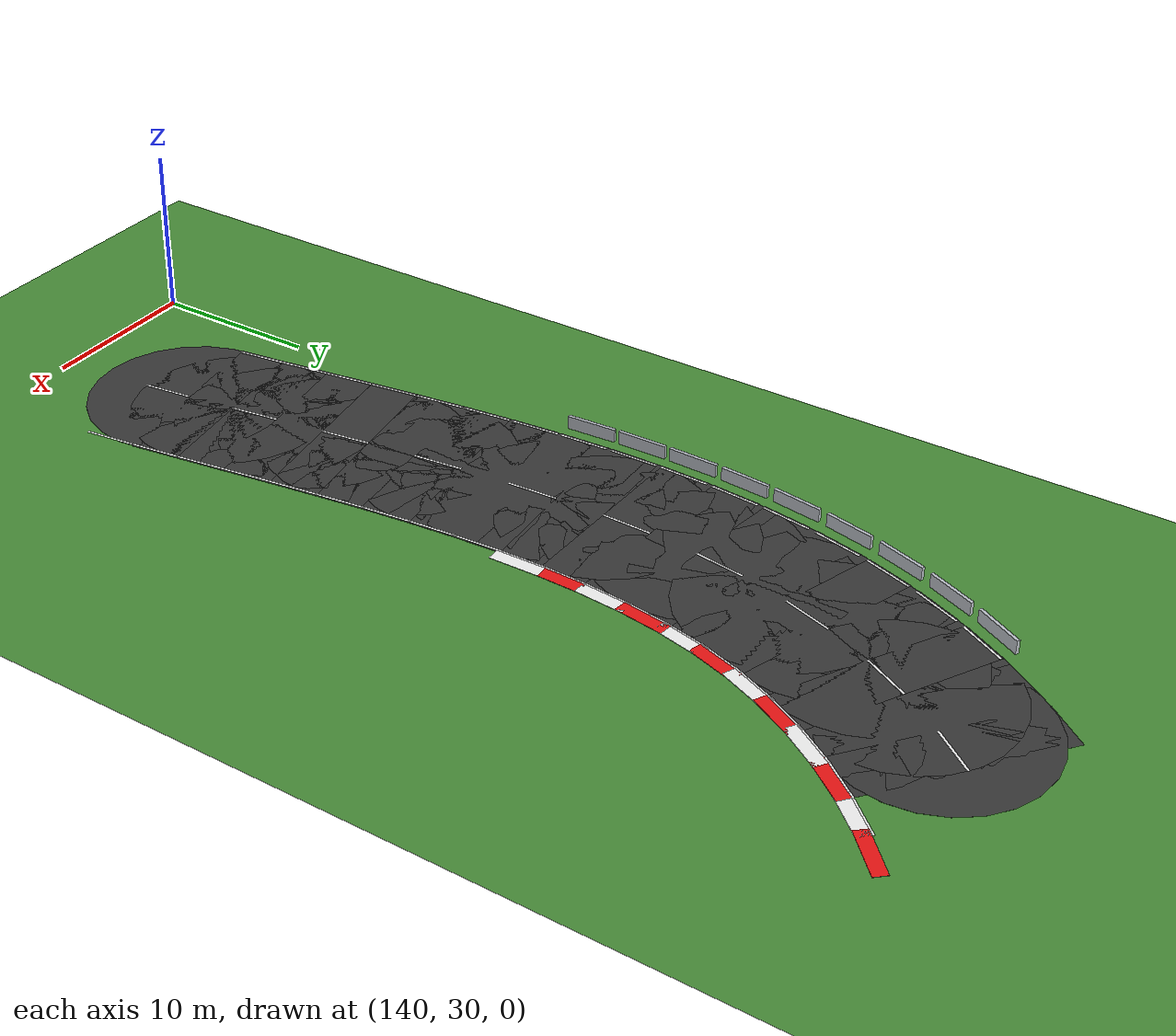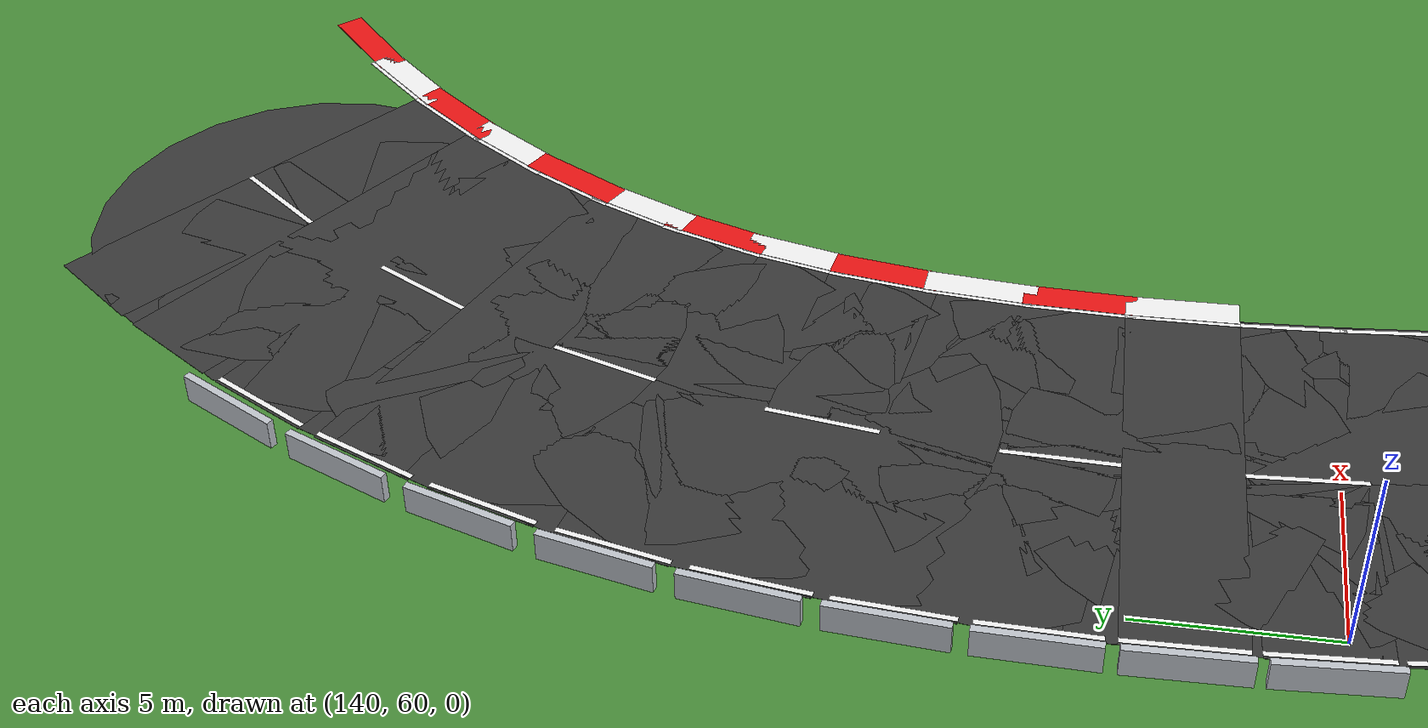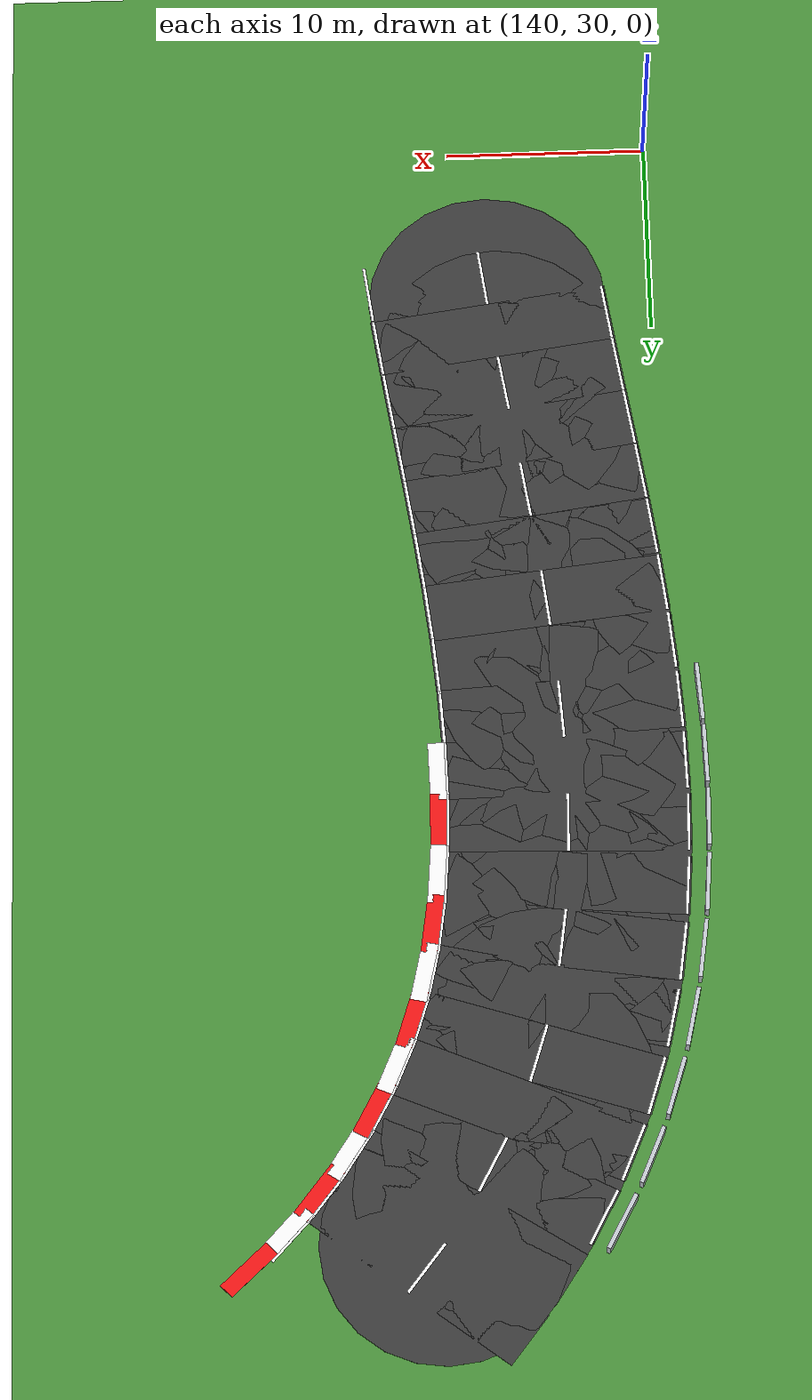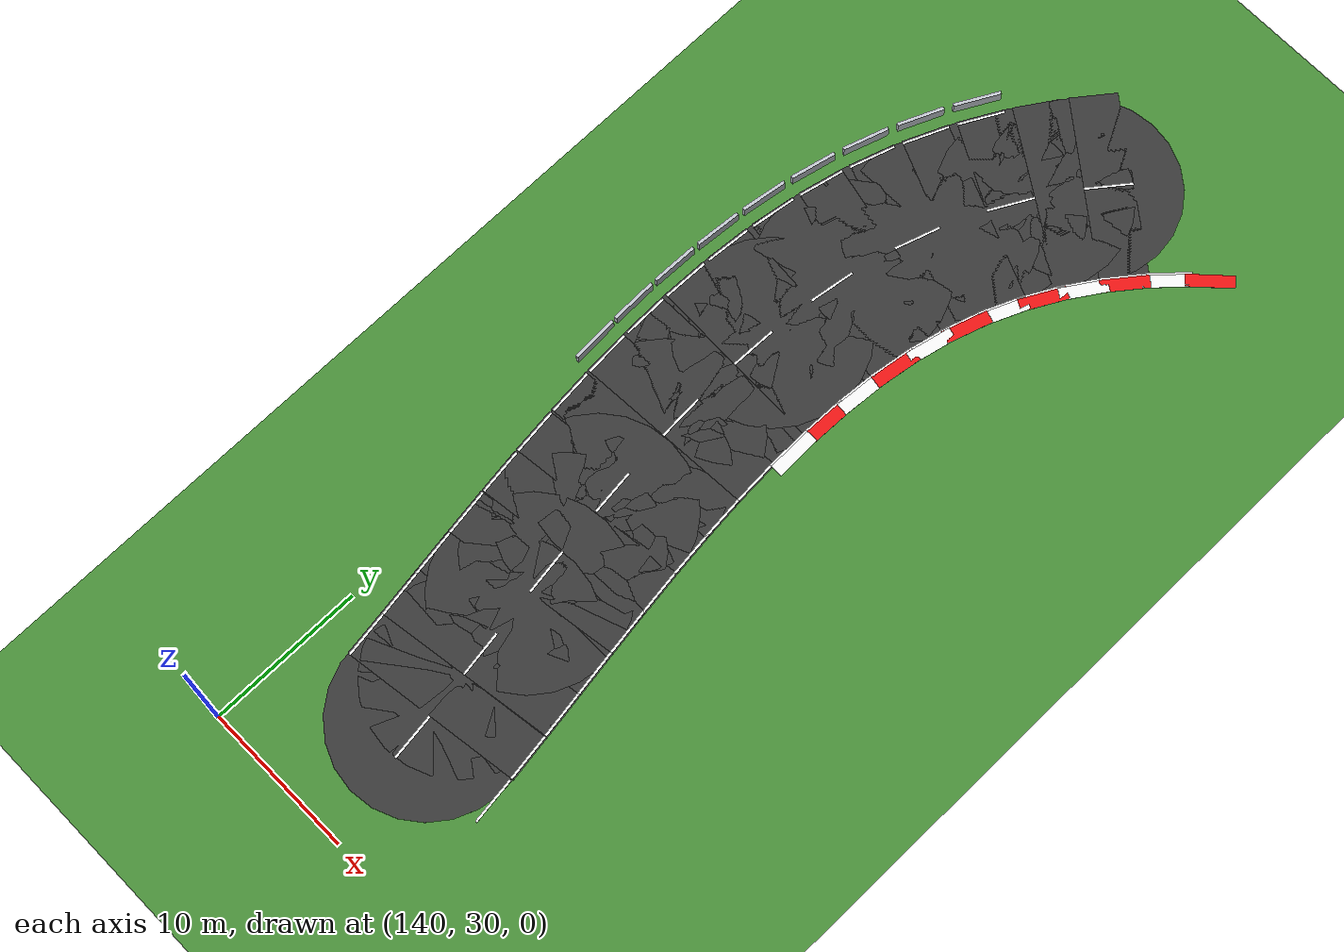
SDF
<sdf version="1.6">
 <world name="sem_silesia_ring_2026">
  <model name="ground_plane">
   <static>true</static>
   <link name="link">
    <collision name="collision">
     <geometry><plane><normal>0 0 1</normal><size>1200 1200</size></plane></geometry>
     <surface><friction><ode><mu>0.6</mu><mu2>0.6</mu2></ode></friction></surface>
    </collision>
    <visual name="visual">
     <geometry><plane><normal>0 0 1</normal><size>1200 1200</size></plane></geometry>
     <material><ambient>0.28 0.55 0.22 1</ambient><diffuse>0.28 0.55 0.22 1</diffuse></material>
    </visual>
   </link>
  </model>
  <model name="wl_R_s58">
   <static>true</static>
   <pose>154.2240 37.7542 0.0070 0 0 1.7028</pose>
   <link name="link">
    <visual name="v">
     <geometry><box><size>3.0025 0.1500 0.0080</size></box></geometry>
     <material><ambient>0.95 0.95 0.95 1</ambient><diffuse>0.95 0.95 0.95 1</diffuse></material>
    </visual>
   </link>
  </model>
  <model name="cd_s58">
   <static>true</static>
   <pose>148.4249 36.9842 0.0070 0 0 1.7028</pose>
   <link name="link">
    <visual name="v">
     <geometry><box><size>3.0025 0.1500 0.0080</size></box></geometry>
     <material><ambient>0.95 0.95 0.95 1</ambient><diffuse>0.95 0.95 0.95 1</diffuse></material>
    </visual>
   </link>
  </model>
  <model name="road_s59">
   <static>true</static>
   <pose>148.0098 39.9578 0.0030 0 0 1.7161</pose>
   <link name="link">
    <visual name="v">
     <geometry><box><size>3.0025 12.0000 0.0060</size></box></geometry>
     <material><ambient>0.22 0.22 0.22 1</ambient><diffuse>0.22 0.22 0.22 1</diffuse></material>
    </visual>
    <collision name="c">
     <geometry><box><size>3.0025 12.0000 0.0060</size></box></geometry>
     <surface><friction><ode><mu>0.9</mu><mu2>0.9</mu2></ode></friction></surface>
    </collision>
   </link>
  </model>
  <model name="road_jnt59">
   <static>true</static>
   <pose>148.2273 38.4724 0.0030 0 0 0</pose>
   <link name="link">
    <visual name="v">
     <geometry><cylinder><radius>6.0000</radius><length>0.0060</length></cylinder></geometry>
     <material><ambient>0.22 0.22 0.22 1</ambient><diffuse>0.22 0.22 0.22 1</diffuse></material>
    </visual>
    <collision name="c">
     <geometry><cylinder><radius>6.0000</radius><length>0.0060</length></cylinder></geometry>
     <surface><friction><ode><mu>0.9</mu><mu2>0.9</mu2></ode></friction></surface>
    </collision>
   </link>
  </model>
  <model name="wl_L_s59">
   <static>true</static>
   <pose>142.2215 39.1106 0.0070 0 0 1.7161</pose>
   <link name="link">
    <visual name="v">
     <geometry><box><size>3.0025 0.1500 0.0080</size></box></geometry>
     <material><ambient>0.95 0.95 0.95 1</ambient><diffuse>0.95 0.95 0.95 1</diffuse></material>
    </visual>
   </link>
  </model>
  <model name="wl_R_s59">
   <static>true</static>
   <pose>153.7982 40.8051 0.0070 0 0 1.7161</pose>
   <link name="link">
    <visual name="v">
     <geometry><box><size>3.0025 0.1500 0.0080</size></box></geometry>
     <material><ambient>0.95 0.95 0.95 1</ambient><diffuse>0.95 0.95 0.95 1</diffuse></material>
    </visual>
   </link>
  </model>
  <model name="road_s60">
   <static>true</static>
   <pose>147.5647 42.9272 0.0030 0 0 1.7231</pose>
   <link name="link">
    <visual name="v">
     <geometry><box><size>3.0025 12.0000 0.0060</size></box></geometry>
     <material><ambient>0.22 0.22 0.22 1</ambient><diffuse>0.22 0.22 0.22 1</diffuse></material>
    </visual>
    <collision name="c">
     <geometry><box><size>3.0025 12.0000 0.0060</size></box></geometry>
     <surface><friction><ode><mu>0.9</mu><mu2>0.9</mu2></ode></friction></surface>
    </collision>
   </link>
  </model>
  <model name="road_jnt60">
   <static>true</static>
   <pose>147.7924 41.4433 0.0030 0 0 0</pose>
   <link name="link">
    <visual name="v">
     <geometry><cylinder><radius>6.0000</radius><length>0.0060</length></cylinder></geometry>
     <material><ambient>0.22 0.22 0.22 1</ambient><diffuse>0.22 0.22 0.22 1</diffuse></material>
    </visual>
    <collision name="c">
     <geometry><cylinder><radius>6.0000</radius><length>0.0060</length></cylinder></geometry>
     <surface><friction><ode><mu>0.9</mu><mu2>0.9</mu2></ode></friction></surface>
    </collision>
   </link>
  </model>
  <model name="wl_L_s60">
   <static>true</static>
   <pose>141.7824 42.0397 0.0070 0 0 1.7231</pose>
   <link name="link">
    <visual name="v">
     <geometry><box><size>3.0025 0.1500 0.0080</size></box></geometry>
     <material><ambient>0.95 0.95 0.95 1</ambient><diffuse>0.95 0.95 0.95 1</diffuse></material>
    </visual>
   </link>
  </model>
  <model name="wl_R_s60">
   <static>true</static>
   <pose>153.3470 43.8147 0.0070 0 0 1.7231</pose>
   <link name="link">
    <visual name="v">
     <geometry><box><size>3.0025 0.1500 0.0080</size></box></geometry>
     <material><ambient>0.95 0.95 0.95 1</ambient><diffuse>0.95 0.95 0.95 1</diffuse></material>
    </visual>
   </link>
  </model>
  <model name="cd_s60">
   <static>true</static>
   <pose>147.5647 42.9272 0.0070 0 0 1.7231</pose>
   <link name="link">
    <visual name="v">
     <geometry><box><size>3.0025 0.1500 0.0080</size></box></geometry>
     <material><ambient>0.95 0.95 0.95 1</ambient><diffuse>0.95 0.95 0.95 1</diffuse></material>
    </visual>
   </link>
  </model>
  <model name="road_s61">
   <static>true</static>
   <pose>147.1086 45.8949 0.0030 0 0 1.7235</pose>
   <link name="link">
    <visual name="v">
     <geometry><box><size>3.0025 12.0000 0.0060</size></box></geometry>
     <material><ambient>0.22 0.22 0.22 1</ambient><diffuse>0.22 0.22 0.22 1</diffuse></material>
    </visual>
    <collision name="c">
     <geometry><box><size>3.0025 12.0000 0.0060</size></box></geometry>
     <surface><friction><ode><mu>0.9</mu><mu2>0.9</mu2></ode></friction></surface>
    </collision>
   </link>
  </model>
  <model name="road_jnt61">
   <static>true</static>
   <pose>147.3369 44.4111 0.0030 0 0 0</pose>
   <link name="link">
    <visual name="v">
     <geometry><cylinder><radius>6.0000</radius><length>0.0060</length></cylinder></geometry>
     <material><ambient>0.22 0.22 0.22 1</ambient><diffuse>0.22 0.22 0.22 1</diffuse></material>
    </visual>
    <collision name="c">
     <geometry><cylinder><radius>6.0000</radius><length>0.0060</length></cylinder></geometry>
     <surface><friction><ode><mu>0.9</mu><mu2>0.9</mu2></ode></friction></surface>
    </collision>
   </link>
  </model>
  <model name="wl_L_s61">
   <static>true</static>
   <pose>141.3267 45.0053 0.0070 0 0 1.7235</pose>
   <link name="link">
    <visual name="v">
     <geometry><box><size>3.0025 0.1500 0.0080</size></box></geometry>
     <material><ambient>0.95 0.95 0.95 1</ambient><diffuse>0.95 0.95 0.95 1</diffuse></material>
    </visual>
   </link>
  </model>
  <model name="wl_R_s61">
   <static>true</static>
   <pose>152.8906 46.7845 0.0070 0 0 1.7235</pose>
   <link name="link">
    <visual name="v">
     <geometry><box><size>3.0025 0.1500 0.0080</size></box></geometry>
     <material><ambient>0.95 0.95 0.95 1</ambient><diffuse>0.95 0.95 0.95 1</diffuse></material>
    </visual>
   </link>
  </model>
  <model name="road_s62">
   <static>true</static>
   <pose>146.6612 48.8639 0.0030 0 0 1.7173</pose>
   <link name="link">
    <visual name="v">
     <geometry><box><size>3.0025 12.0000 0.0060</size></box></geometry>
     <material><ambient>0.22 0.22 0.22 1</ambient><diffuse>0.22 0.22 0.22 1</diffuse></material>
    </visual>
    <collision name="c">
     <geometry><box><size>3.0025 12.0000 0.0060</size></box></geometry>
     <surface><friction><ode><mu>0.9</mu><mu2>0.9</mu2></ode></friction></surface>
    </collision>
   </link>
  </model>
  <model name="road_jnt62">
   <static>true</static>
   <pose>146.8803 47.3787 0.0030 0 0 0</pose>
   <link name="link">
    <visual name="v">
     <geometry><cylinder><radius>6.0000</radius><length>0.0060</length></cylinder></geometry>
     <material><ambient>0.22 0.22 0.22 1</ambient><diffuse>0.22 0.22 0.22 1</diffuse></material>
    </visual>
    <collision name="c">
     <geometry><cylinder><radius>6.0000</radius><length>0.0060</length></cylinder></geometry>
     <surface><friction><ode><mu>0.9</mu><mu2>0.9</mu2></ode></friction></surface>
    </collision>
   </link>
  </model>
  <model name="wl_L_s62">
   <static>true</static>
   <pose>140.8739 48.0101 0.0070 0 0 1.7173</pose>
   <link name="link">
    <visual name="v">
     <geometry><box><size>3.0025 0.1500 0.0080</size></box></geometry>
     <material><ambient>0.95 0.95 0.95 1</ambient><diffuse>0.95 0.95 0.95 1</diffuse></material>
    </visual>
   </link>
  </model>
  <model name="wl_R_s62">
   <static>true</static>
   <pose>152.4486 49.7176 0.0070 0 0 1.7173</pose>
   <link name="link">
    <visual name="v">
     <geometry><box><size>3.0025 0.1500 0.0080</size></box></geometry>
     <material><ambient>0.95 0.95 0.95 1</ambient><diffuse>0.95 0.95 0.95 1</diffuse></material>
    </visual>
   </link>
  </model>
  <model name="cd_s62">
   <static>true</static>
   <pose>146.6612 48.8639 0.0070 0 0 1.7173</pose>
   <link name="link">
    <visual name="v">
     <geometry><box><size>3.0025 0.1500 0.0080</size></box></geometry>
     <material><ambient>0.95 0.95 0.95 1</ambient><diffuse>0.95 0.95 0.95 1</diffuse></material>
    </visual>
   </link>
  </model>
  <model name="road_s63">
   <static>true</static>
   <pose>146.2415 51.8368 0.0030 0 0 1.7048</pose>
   <link name="link">
    <visual name="v">
     <geometry><box><size>3.0025 12.0000 0.0060</size></box></geometry>
     <material><ambient>0.22 0.22 0.22 1</ambient><diffuse>0.22 0.22 0.22 1</diffuse></material>
    </visual>
    <collision name="c">
     <geometry><box><size>3.0025 12.0000 0.0060</size></box></geometry>
     <surface><friction><ode><mu>0.9</mu><mu2>0.9</mu2></ode></friction></surface>
    </collision>
   </link>
  </model>
  <model name="road_jnt63">
   <static>true</static>
   <pose>146.4421 50.3490 0.0030 0 0 0</pose>
   <link name="link">
    <visual name="v">
     <geometry><cylinder><radius>6.0000</radius><length>0.0060</length></cylinder></geometry>
     <material><ambient>0.22 0.22 0.22 1</ambient><diffuse>0.22 0.22 0.22 1</diffuse></material>
    </visual>
    <collision name="c">
     <geometry><cylinder><radius>6.0000</radius><length>0.0060</length></cylinder></geometry>
     <surface><friction><ode><mu>0.9</mu><mu2>0.9</mu2></ode></friction></surface>
    </collision>
   </link>
  </model>
  <model name="wl_L_s63">
   <static>true</static>
   <pose>140.4440 51.0550 0.0070 0 0 1.7048</pose>
   <link name="link">
    <visual name="v">
     <geometry><box><size>3.0025 0.1500 0.0080</size></box></geometry>
     <material><ambient>0.95 0.95 0.95 1</ambient><diffuse>0.95 0.95 0.95 1</diffuse></material>
    </visual>
   </link>
  </model>
  <model name="wl_R_s63">
   <static>true</static>
   <pose>152.0390 52.6186 0.0070 0 0 1.7048</pose>
   <link name="link">
    <visual name="v">
     <geometry><box><size>3.0025 0.1500 0.0080</size></box></geometry>
     <material><ambient>0.95 0.95 0.95 1</ambient><diffuse>0.95 0.95 0.95 1</diffuse></material>
    </visual>
   </link>
  </model>
  <model name="road_s64">
   <static>true</static>
   <pose>145.8673 54.8158 0.0030 0 0 1.6867</pose>
   <link name="link">
    <visual name="v">
     <geometry><box><size>3.0025 12.0000 0.0060</size></box></geometry>
     <material><ambient>0.22 0.22 0.22 1</ambient><diffuse>0.22 0.22 0.22 1</diffuse></material>
    </visual>
    <collision name="c">
     <geometry><box><size>3.0025 12.0000 0.0060</size></box></geometry>
     <surface><friction><ode><mu>0.9</mu><mu2>0.9</mu2></ode></friction></surface>
    </collision>
   </link>
  </model>
  <model name="road_jnt64">
   <static>true</static>
   <pose>146.0409 53.3246 0.0030 0 0 0</pose>
   <link name="link">
    <visual name="v">
     <geometry><cylinder><radius>6.0000</radius><length>0.0060</length></cylinder></geometry>
     <material><ambient>0.22 0.22 0.22 1</ambient><diffuse>0.22 0.22 0.22 1</diffuse></material>
    </visual>
    <collision name="c">
     <geometry><cylinder><radius>6.0000</radius><length>0.0060</length></cylinder></geometry>
     <surface><friction><ode><mu>0.9</mu><mu2>0.9</mu2></ode></friction></surface>
    </collision>
   </link>
  </model>
  <model name="wl_L_s64">
   <static>true</static>
   <pose>140.0565 54.1396 0.0070 0 0 1.6867</pose>
   <link name="link">
    <visual name="v">
     <geometry><box><size>3.0025 0.1500 0.0080</size></box></geometry>
     <material><ambient>0.95 0.95 0.95 1</ambient><diffuse>0.95 0.95 0.95 1</diffuse></material>
    </visual>
   </link>
  </model>
  <model name="wl_R_s64">
   <static>true</static>
   <pose>151.6781 55.4920 0.0070 0 0 1.6867</pose>
   <link name="link">
    <visual name="v">
     <geometry><box><size>3.0025 0.1500 0.0080</size></box></geometry>
     <material><ambient>0.95 0.95 0.95 1</ambient><diffuse>0.95 0.95 0.95 1</diffuse></material>
    </visual>
   </link>
  </model>
  <model name="cd_s64">
   <static>true</static>
   <pose>145.8673 54.8158 0.0070 0 0 1.6867</pose>
   <link name="link">
    <visual name="v">
     <geometry><box><size>3.0025 0.1500 0.0080</size></box></geometry>
     <material><ambient>0.95 0.95 0.95 1</ambient><diffuse>0.95 0.95 0.95 1</diffuse></material>
    </visual>
   </link>
  </model>
  <model name="road_s65">
   <static>true</static>
   <pose>145.5567 57.8019 0.0030 0 0 1.6623</pose>
   <link name="link">
    <visual name="v">
     <geometry><box><size>3.0024 12.0000 0.0060</size></box></geometry>
     <material><ambient>0.22 0.22 0.22 1</ambient><diffuse>0.22 0.22 0.22 1</diffuse></material>
    </visual>
    <collision name="c">
     <geometry><box><size>3.0024 12.0000 0.0060</size></box></geometry>
     <surface><friction><ode><mu>0.9</mu><mu2>0.9</mu2></ode></friction></surface>
    </collision>
   </link>
  </model>
  <model name="road_jnt65">
   <static>true</static>
   <pose>145.6938 56.3070 0.0030 0 0 0</pose>
   <link name="link">
    <visual name="v">
     <geometry><cylinder><radius>6.0000</radius><length>0.0060</length></cylinder></geometry>
     <material><ambient>0.22 0.22 0.22 1</ambient><diffuse>0.22 0.22 0.22 1</diffuse></material>
    </visual>
    <collision name="c">
     <geometry><cylinder><radius>6.0000</radius><length>0.0060</length></cylinder></geometry>
     <surface><friction><ode><mu>0.9</mu><mu2>0.9</mu2></ode></friction></surface>
    </collision>
   </link>
  </model>
  <model name="wl_L_s65">
   <static>true</static>
   <pose>139.7311 57.2675 0.0070 0 0 1.6623</pose>
   <link name="link">
    <visual name="v">
     <geometry><box><size>3.0024 0.1500 0.0080</size></box></geometry>
     <material><ambient>0.95 0.95 0.95 1</ambient><diffuse>0.95 0.95 0.95 1</diffuse></material>
    </visual>
   </link>
  </model>
  <model name="wl_R_s65">
   <static>true</static>
   <pose>151.3822 58.3363 0.0070 0 0 1.6623</pose>
   <link name="link">
    <visual name="v">
     <geometry><box><size>3.0024 0.1500 0.0080</size></box></geometry>
     <material><ambient>0.95 0.95 0.95 1</ambient><diffuse>0.95 0.95 0.95 1</diffuse></material>
    </visual>
   </link>
  </model>
  <model name="road_s66">
   <static>true</static>
   <pose>145.3291 60.7953 0.0030 0 0 1.6310</pose>
   <link name="link">
    <visual name="v">
     <geometry><box><size>3.0024 12.0000 0.0060</size></box></geometry>
     <material><ambient>0.22 0.22 0.22 1</ambient><diffuse>0.22 0.22 0.22 1</diffuse></material>
    </visual>
    <collision name="c">
     <geometry><box><size>3.0024 12.0000 0.0060</size></box></geometry>
     <surface><friction><ode><mu>0.9</mu><mu2>0.9</mu2></ode></friction></surface>
    </collision>
   </link>
  </model>
  <model name="road_jnt66">
   <static>true</static>
   <pose>145.4195 59.2969 0.0030 0 0 0</pose>
   <link name="link">
    <visual name="v">
     <geometry><cylinder><radius>6.0000</radius><length>0.0060</length></cylinder></geometry>
     <material><ambient>0.22 0.22 0.22 1</ambient><diffuse>0.22 0.22 0.22 1</diffuse></material>
    </visual>
    <collision name="c">
     <geometry><cylinder><radius>6.0000</radius><length>0.0060</length></cylinder></geometry>
     <surface><friction><ode><mu>0.9</mu><mu2>0.9</mu2></ode></friction></surface>
    </collision>
   </link>
  </model>
  <model name="wl_L_s66">
   <static>true</static>
   <pose>139.4897 60.4431 0.0070 0 0 1.6310</pose>
   <link name="link">
    <visual name="v">
     <geometry><box><size>3.0024 0.1500 0.0080</size></box></geometry>
     <material><ambient>0.95 0.95 0.95 1</ambient><diffuse>0.95 0.95 0.95 1</diffuse></material>
    </visual>
   </link>
  </model>
  <model name="wl_R_s66">
   <static>true</static>
   <pose>151.1685 61.1475 0.0070 0 0 1.6310</pose>
   <link name="link">
    <visual name="v">
     <geometry><box><size>3.0024 0.1500 0.0080</size></box></geometry>
     <material><ambient>0.95 0.95 0.95 1</ambient><diffuse>0.95 0.95 0.95 1</diffuse></material>
    </visual>
   </link>
  </model>
  <model name="cd_s66">
   <static>true</static>
   <pose>145.3291 60.7953 0.0070 0 0 1.6310</pose>
   <link name="link">
    <visual name="v">
     <geometry><box><size>3.0024 0.1500 0.0080</size></box></geometry>
     <material><ambient>0.95 0.95 0.95 1</ambient><diffuse>0.95 0.95 0.95 1</diffuse></material>
    </visual>
   </link>
  </model>
  <model name="arm_outL_66">
   <static>true</static>
   <pose>138.5415 60.3859 0.4000 0 0 1.6310</pose>
   <link name="link">
    <visual name="v">
     <geometry><box><size>3.0024 0.2000 0.8000</size></box></geometry>
     <material><ambient>0.75 0.77 0.80 1</ambient><diffuse>0.75 0.77 0.80 1</diffuse></material>
    </visual>
    <collision name="c">
     <geometry><box><size>3.0024 0.2000 0.8000</size></box></geometry>
     <surface><friction><ode><mu>0.8</mu><mu2>0.8</mu2></ode></friction></surface>
    </collision>
   </link>
  </model>
  <model name="road_s67">
   <static>true</static>
   <pose>145.2063 63.7946 0.0030 0 0 1.5924</pose>
   <link name="link">
    <visual name="v">
     <geometry><box><size>3.0023 12.0000 0.0060</size></box></geometry>
     <material><ambient>0.22 0.22 0.22 1</ambient><diffuse>0.22 0.22 0.22 1</diffuse></material>
    </visual>
    <collision name="c">
     <geometry><box><size>3.0023 12.0000 0.0060</size></box></geometry>
     <surface><friction><ode><mu>0.9</mu><mu2>0.9</mu2></ode></friction></surface>
    </collision>
   </link>
  </model>
  <model name="road_jnt67">
   <static>true</static>
   <pose>145.2388 62.2938 0.0030 0 0 0</pose>
   <link name="link">
    <visual name="v">
     <geometry><cylinder><radius>6.0000</radius><length>0.0060</length></cylinder></geometry>
     <material><ambient>0.22 0.22 0.22 1</ambient><diffuse>0.22 0.22 0.22 1</diffuse></material>
    </visual>
    <collision name="c">
     <geometry><cylinder><radius>6.0000</radius><length>0.0060</length></cylinder></geometry>
     <surface><friction><ode><mu>0.9</mu><mu2>0.9</mu2></ode></friction></surface>
    </collision>
   </link>
  </model>
  <model name="wl_L_s67">
   <static>true</static>
   <pose>139.3577 63.6682 0.0070 0 0 1.5924</pose>
   <link name="link">
    <visual name="v">
     <geometry><box><size>3.0023 0.1500 0.0080</size></box></geometry>
     <material><ambient>0.95 0.95 0.95 1</ambient><diffuse>0.95 0.95 0.95 1</diffuse></material>
    </visual>
   </link>
  </model>
  <model name="wl_R_s67">
   <static>true</static>
   <pose>151.0549 63.9211 0.0070 0 0 1.5924</pose>
   <link name="link">
    <visual name="v">
     <geometry><box><size>3.0023 0.1500 0.0080</size></box></geometry>
     <material><ambient>0.95 0.95 0.95 1</ambient><diffuse>0.95 0.95 0.95 1</diffuse></material>
    </visual>
   </link>
  </model>
  <model name="kerb_R_67">
   <static>true</static>
   <pose>151.5048 63.9308 0.0120 0 0 1.5924</pose>
   <link name="link">
    <visual name="v">
     <geometry><box><size>3.0023 0.8000 0.0160</size></box></geometry>
     <material><ambient>0.95 0.95 0.95 1</ambient><diffuse>0.95 0.95 0.95 1</diffuse></material>
    </visual>
   </link>
  </model>
  <model name="arm_outL_67">
   <static>true</static>
   <pose>138.4079 63.6476 0.4000 0 0 1.5924</pose>
   <link name="link">
    <visual name="v">
     <geometry><box><size>3.0023 0.2000 0.8000</size></box></geometry>
     <material><ambient>0.75 0.77 0.80 1</ambient><diffuse>0.75 0.77 0.80 1</diffuse></material>
    </visual>
    <collision name="c">
     <geometry><box><size>3.0023 0.2000 0.8000</size></box></geometry>
     <surface><friction><ode><mu>0.8</mu><mu2>0.8</mu2></ode></friction></surface>
    </collision>
   </link>
  </model>
  <model name="road_s68">
   <static>true</static>
   <pose>145.2116 66.7960 0.0030 0 0 1.5456</pose>
   <link name="link">
    <visual name="v">
     <geometry><box><size>3.0022 12.0000 0.0060</size></box></geometry>
     <material><ambient>0.22 0.22 0.22 1</ambient><diffuse>0.22 0.22 0.22 1</diffuse></material>
    </visual>
    <collision name="c">
     <geometry><box><size>3.0022 12.0000 0.0060</size></box></geometry>
     <surface><friction><ode><mu>0.9</mu><mu2>0.9</mu2></ode></friction></surface>
    </collision>
   </link>
  </model>
  <model name="road_jnt68">
   <static>true</static>
   <pose>145.1739 65.2954 0.0030 0 0 0</pose>
   <link name="link">
    <visual name="v">
     <geometry><cylinder><radius>6.0000</radius><length>0.0060</length></cylinder></geometry>
     <material><ambient>0.22 0.22 0.22 1</ambient><diffuse>0.22 0.22 0.22 1</diffuse></material>
    </visual>
    <collision name="c">
     <geometry><cylinder><radius>6.0000</radius><length>0.0060</length></cylinder></geometry>
     <surface><friction><ode><mu>0.9</mu><mu2>0.9</mu2></ode></friction></surface>
    </collision>
   </link>
  </model>
  <model name="wl_L_s68">
   <static>true</static>
   <pose>139.3635 66.9433 0.0070 0 0 1.5456</pose>
   <link name="link">
    <visual name="v">
     <geometry><box><size>3.0022 0.1500 0.0080</size></box></geometry>
     <material><ambient>0.95 0.95 0.95 1</ambient><diffuse>0.95 0.95 0.95 1</diffuse></material>
    </visual>
   </link>
  </model>
  <model name="wl_R_s68">
   <static>true</static>
   <pose>151.0598 66.6488 0.0070 0 0 1.5456</pose>
   <link name="link">
    <visual name="v">
     <geometry><box><size>3.0022 0.1500 0.0080</size></box></geometry>
     <material><ambient>0.95 0.95 0.95 1</ambient><diffuse>0.95 0.95 0.95 1</diffuse></material>
    </visual>
   </link>
  </model>
  <model name="cd_s68">
   <static>true</static>
   <pose>145.2116 66.7960 0.0070 0 0 1.5456</pose>
   <link name="link">
    <visual name="v">
     <geometry><box><size>3.0022 0.1500 0.0080</size></box></geometry>
     <material><ambient>0.95 0.95 0.95 1</ambient><diffuse>0.95 0.95 0.95 1</diffuse></material>
    </visual>
   </link>
  </model>
  <model name="kerb_R_68">
   <static>true</static>
   <pose>151.5096 66.6375 0.0120 0 0 1.5456</pose>
   <link name="link">
    <visual name="v">
     <geometry><box><size>3.0022 0.8000 0.0160</size></box></geometry>
     <material><ambient>0.92 0.08 0.08 1</ambient><diffuse>0.92 0.08 0.08 1</diffuse></material>
    </visual>
   </link>
  </model>
  <model name="arm_outL_68">
   <static>true</static>
   <pose>138.4138 66.9672 0.4000 0 0 1.5456</pose>
   <link name="link">
    <visual name="v">
     <geometry><box><size>3.0022 0.2000 0.8000</size></box></geometry>
     <material><ambient>0.75 0.77 0.80 1</ambient><diffuse>0.75 0.77 0.80 1</diffuse></material>
    </visual>
    <collision name="c">
     <geometry><box><size>3.0022 0.2000 0.8000</size></box></geometry>
     <surface><friction><ode><mu>0.8</mu><mu2>0.8</mu2></ode></friction></surface>
    </collision>
   </link>
  </model>
  <model name="road_s69">
   <static>true</static>
   <pose>145.3711 69.7928 0.0030 0 0 1.4897</pose>
   <link name="link">
    <visual name="v">
     <geometry><box><size>3.0021 12.0000 0.0060</size></box></geometry>
     <material><ambient>0.22 0.22 0.22 1</ambient><diffuse>0.22 0.22 0.22 1</diffuse></material>
    </visual>
    <collision name="c">
     <geometry><box><size>3.0021 12.0000 0.0060</size></box></geometry>
     <surface><friction><ode><mu>0.9</mu><mu2>0.9</mu2></ode></friction></surface>
    </collision>
   </link>
  </model>
  <model name="road_jnt69">
   <static>true</static>
   <pose>145.2494 68.2967 0.0030 0 0 0</pose>
   <link name="link">
    <visual name="v">
     <geometry><cylinder><radius>6.0000</radius><length>0.0060</length></cylinder></geometry>
     <material><ambient>0.22 0.22 0.22 1</ambient><diffuse>0.22 0.22 0.22 1</diffuse></material>
    </visual>
    <collision name="c">
     <geometry><cylinder><radius>6.0000</radius><length>0.0060</length></cylinder></geometry>
     <surface><friction><ode><mu>0.9</mu><mu2>0.9</mu2></ode></friction></surface>
    </collision>
   </link>
  </model>
  <model name="wl_L_s69">
   <static>true</static>
   <pose>139.5403 70.2669 0.0070 0 0 1.4897</pose>
   <link name="link">
    <visual name="v">
     <geometry><box><size>3.0021 0.1500 0.0080</size></box></geometry>
     <material><ambient>0.95 0.95 0.95 1</ambient><diffuse>0.95 0.95 0.95 1</diffuse></material>
    </visual>
   </link>
  </model>
  <model name="wl_R_s69">
   <static>true</static>
   <pose>151.2018 69.3186 0.0070 0 0 1.4897</pose>
   <link name="link">
    <visual name="v">
     <geometry><box><size>3.0021 0.1500 0.0080</size></box></geometry>
     <material><ambient>0.95 0.95 0.95 1</ambient><diffuse>0.95 0.95 0.95 1</diffuse></material>
    </visual>
   </link>
  </model>
  <model name="kerb_R_69">
   <static>true</static>
   <pose>151.6504 69.2821 0.0120 0 0 1.4897</pose>
   <link name="link">
    <visual name="v">
     <geometry><box><size>3.0021 0.8000 0.0160</size></box></geometry>
     <material><ambient>0.95 0.95 0.95 1</ambient><diffuse>0.95 0.95 0.95 1</diffuse></material>
    </visual>
   </link>
  </model>
  <model name="arm_outL_69">
   <static>true</static>
   <pose>138.5935 70.3439 0.4000 0 0 1.4897</pose>
   <link name="link">
    <visual name="v">
     <geometry><box><size>3.0021 0.2000 0.8000</size></box></geometry>
     <material><ambient>0.75 0.77 0.80 1</ambient><diffuse>0.75 0.77 0.80 1</diffuse></material>
    </visual>
    <collision name="c">
     <geometry><box><size>3.0021 0.2000 0.8000</size></box></geometry>
     <surface><friction><ode><mu>0.8</mu><mu2>0.8</mu2></ode></friction></surface>
    </collision>
   </link>
  </model>
  <model name="road_s70">
   <static>true</static>
   <pose>145.7132 72.7735 0.0030 0 0 1.4234</pose>
   <link name="link">
    <visual name="v">
     <geometry><box><size>3.0019 12.0000 0.0060</size></box></geometry>
     <material><ambient>0.22 0.22 0.22 1</ambient><diffuse>0.22 0.22 0.22 1</diffuse></material>
    </visual>
    <collision name="c">
     <geometry><box><size>3.0019 12.0000 0.0060</size></box></geometry>
     <surface><friction><ode><mu>0.9</mu><mu2>0.9</mu2></ode></friction></surface>
    </collision>
   </link>
  </model>
  <model name="road_jnt70">
   <static>true</static>
   <pose>145.4927 71.2889 0.0030 0 0 0</pose>
   <link name="link">
    <visual name="v">
     <geometry><cylinder><radius>6.0000</radius><length>0.0060</length></cylinder></geometry>
     <material><ambient>0.22 0.22 0.22 1</ambient><diffuse>0.22 0.22 0.22 1</diffuse></material>
    </visual>
    <collision name="c">
     <geometry><cylinder><radius>6.0000</radius><length>0.0060</length></cylinder></geometry>
     <surface><friction><ode><mu>0.9</mu><mu2>0.9</mu2></ode></friction></surface>
    </collision>
   </link>
  </model>
  <model name="wl_L_s70">
   <static>true</static>
   <pose>139.9266 73.6328 0.0070 0 0 1.4234</pose>
   <link name="link">
    <visual name="v">
     <geometry><box><size>3.0019 0.1500 0.0080</size></box></geometry>
     <material><ambient>0.95 0.95 0.95 1</ambient><diffuse>0.95 0.95 0.95 1</diffuse></material>
    </visual>
   </link>
  </model>
  <model name="wl_R_s70">
   <static>true</static>
   <pose>151.4998 71.9143 0.0070 0 0 1.4234</pose>
   <link name="link">
    <visual name="v">
     <geometry><box><size>3.0019 0.1500 0.0080</size></box></geometry>
     <material><ambient>0.95 0.95 0.95 1</ambient><diffuse>0.95 0.95 0.95 1</diffuse></material>
    </visual>
   </link>
  </model>
  <model name="cd_s70">
   <static>true</static>
   <pose>145.7132 72.7735 0.0070 0 0 1.4234</pose>
   <link name="link">
    <visual name="v">
     <geometry><box><size>3.0019 0.1500 0.0080</size></box></geometry>
     <material><ambient>0.95 0.95 0.95 1</ambient><diffuse>0.95 0.95 0.95 1</diffuse></material>
    </visual>
   </link>
  </model>
  <model name="kerb_R_70">
   <static>true</static>
   <pose>151.9449 71.8482 0.0120 0 0 1.4234</pose>
   <link name="link">
    <visual name="v">
     <geometry><box><size>3.0019 0.8000 0.0160</size></box></geometry>
     <material><ambient>0.92 0.08 0.08 1</ambient><diffuse>0.92 0.08 0.08 1</diffuse></material>
    </visual>
   </link>
  </model>
  <model name="arm_outL_70">
   <static>true</static>
   <pose>138.9869 73.7723 0.4000 0 0 1.4234</pose>
   <link name="link">
    <visual name="v">
     <geometry><box><size>3.0019 0.2000 0.8000</size></box></geometry>
     <material><ambient>0.75 0.77 0.80 1</ambient><diffuse>0.75 0.77 0.80 1</diffuse></material>
    </visual>
    <collision name="c">
     <geometry><box><size>3.0019 0.2000 0.8000</size></box></geometry>
     <surface><friction><ode><mu>0.8</mu><mu2>0.8</mu2></ode></friction></surface>
    </collision>
   </link>
  </model>
  <model name="road_s71">
   <static>true</static>
   <pose>146.2685 75.7212 0.0030 0 0 1.3458</pose>
   <link name="link">
    <visual name="v">
     <geometry><box><size>3.0017 12.0000 0.0060</size></box></geometry>
     <material><ambient>0.22 0.22 0.22 1</ambient><diffuse>0.22 0.22 0.22 1</diffuse></material>
    </visual>
    <collision name="c">
     <geometry><box><size>3.0017 12.0000 0.0060</size></box></geometry>
     <surface><friction><ode><mu>0.9</mu><mu2>0.9</mu2></ode></friction></surface>
    </collision>
   </link>
  </model>
  <model name="road_jnt71">
   <static>true</static>
   <pose>145.9337 74.2582 0.0030 0 0 0</pose>
   <link name="link">
    <visual name="v">
     <geometry><cylinder><radius>6.0000</radius><length>0.0060</length></cylinder></geometry>
     <material><ambient>0.22 0.22 0.22 1</ambient><diffuse>0.22 0.22 0.22 1</diffuse></material>
    </visual>
    <collision name="c">
     <geometry><cylinder><radius>6.0000</radius><length>0.0060</length></cylinder></geometry>
     <surface><friction><ode><mu>0.9</mu><mu2>0.9</mu2></ode></friction></surface>
    </collision>
   </link>
  </model>
  <model name="wl_L_s71">
   <static>true</static>
   <pose>140.5660 77.0265 0.0070 0 0 1.3458</pose>
   <link name="link">
    <visual name="v">
     <geometry><box><size>3.0017 0.1500 0.0080</size></box></geometry>
     <material><ambient>0.95 0.95 0.95 1</ambient><diffuse>0.95 0.95 0.95 1</diffuse></material>
    </visual>
   </link>
  </model>
  <model name="wl_R_s71">
   <static>true</static>
   <pose>151.9711 74.4159 0.0070 0 0 1.3458</pose>
   <link name="link">
    <visual name="v">
     <geometry><box><size>3.0017 0.1500 0.0080</size></box></geometry>
     <material><ambient>0.95 0.95 0.95 1</ambient><diffuse>0.95 0.95 0.95 1</diffuse></material>
    </visual>
   </link>
  </model>
  <model name="kerb_R_71">
   <static>true</static>
   <pose>152.4097 74.3155 0.0120 0 0 1.3458</pose>
   <link name="link">
    <visual name="v">
     <geometry><box><size>3.0017 0.8000 0.0160</size></box></geometry>
     <material><ambient>0.95 0.95 0.95 1</ambient><diffuse>0.95 0.95 0.95 1</diffuse></material>
    </visual>
   </link>
  </model>
  <model name="arm_outL_71">
   <static>true</static>
   <pose>139.6400 77.2385 0.4000 0 0 1.3458</pose>
   <link name="link">
    <visual name="v">
     <geometry><box><size>3.0017 0.2000 0.8000</size></box></geometry>
     <material><ambient>0.75 0.77 0.80 1</ambient><diffuse>0.75 0.77 0.80 1</diffuse></material>
    </visual>
    <collision name="c">
     <geometry><box><size>3.0017 0.2000 0.8000</size></box></geometry>
     <surface><friction><ode><mu>0.8</mu><mu2>0.8</mu2></ode></friction></surface>
    </collision>
   </link>
  </model>
  <model name="road_s72">
   <static>true</static>
   <pose>147.0668 78.6116 0.0030 0 0 1.2569</pose>
   <link name="link">
    <visual name="v">
     <geometry><box><size>3.0015 12.0000 0.0060</size></box></geometry>
     <material><ambient>0.22 0.22 0.22 1</ambient><diffuse>0.22 0.22 0.22 1</diffuse></material>
    </visual>
    <collision name="c">
     <geometry><box><size>3.0015 12.0000 0.0060</size></box></geometry>
     <surface><friction><ode><mu>0.9</mu><mu2>0.9</mu2></ode></friction></surface>
    </collision>
   </link>
  </model>
  <model name="road_jnt72">
   <static>true</static>
   <pose>146.6034 77.1842 0.0030 0 0 0</pose>
   <link name="link">
    <visual name="v">
     <geometry><cylinder><radius>6.0000</radius><length>0.0060</length></cylinder></geometry>
     <material><ambient>0.22 0.22 0.22 1</ambient><diffuse>0.22 0.22 0.22 1</diffuse></material>
    </visual>
    <collision name="c">
     <geometry><cylinder><radius>6.0000</radius><length>0.0060</length></cylinder></geometry>
     <surface><friction><ode><mu>0.9</mu><mu2>0.9</mu2></ode></friction></surface>
    </collision>
   </link>
  </model>
  <model name="wl_L_s72">
   <static>true</static>
   <pose>141.5027 80.4180 0.0070 0 0 1.2569</pose>
   <link name="link">
    <visual name="v">
     <geometry><box><size>3.0015 0.1500 0.0080</size></box></geometry>
     <material><ambient>0.95 0.95 0.95 1</ambient><diffuse>0.95 0.95 0.95 1</diffuse></material>
    </visual>
   </link>
  </model>
  <model name="wl_R_s72">
   <static>true</static>
   <pose>152.6309 76.8052 0.0070 0 0 1.2569</pose>
   <link name="link">
    <visual name="v">
     <geometry><box><size>3.0015 0.1500 0.0080</size></box></geometry>
     <material><ambient>0.95 0.95 0.95 1</ambient><diffuse>0.95 0.95 0.95 1</diffuse></material>
    </visual>
   </link>
  </model>
  <model name="cd_s72">
   <static>true</static>
   <pose>147.0668 78.6116 0.0070 0 0 1.2569</pose>
   <link name="link">
    <visual name="v">
     <geometry><box><size>3.0015 0.1500 0.0080</size></box></geometry>
     <material><ambient>0.95 0.95 0.95 1</ambient><diffuse>0.95 0.95 0.95 1</diffuse></material>
    </visual>
   </link>
  </model>
  <model name="kerb_R_72">
   <static>true</static>
   <pose>153.0589 76.6663 0.0120 0 0 1.2569</pose>
   <link name="link">
    <visual name="v">
     <geometry><box><size>3.0015 0.8000 0.0160</size></box></geometry>
     <material><ambient>0.92 0.08 0.08 1</ambient><diffuse>0.92 0.08 0.08 1</diffuse></material>
    </visual>
   </link>
  </model>
  <model name="arm_outL_72">
   <static>true</static>
   <pose>140.5991 80.7113 0.4000 0 0 1.2569</pose>
   <link name="link">
    <visual name="v">
     <geometry><box><size>3.0015 0.2000 0.8000</size></box></geometry>
     <material><ambient>0.75 0.77 0.80 1</ambient><diffuse>0.75 0.77 0.80 1</diffuse></material>
    </visual>
    <collision name="c">
     <geometry><box><size>3.0015 0.2000 0.8000</size></box></geometry>
     <surface><friction><ode><mu>0.8</mu><mu2>0.8</mu2></ode></friction></surface>
    </collision>
   </link>
  </model>
  <model name="road_s73">
   <static>true</static>
   <pose>148.1225 81.4179 0.0030 0 0 1.1651</pose>
   <link name="link">
    <visual name="v">
     <geometry><box><size>3.0015 12.0000 0.0060</size></box></geometry>
     <material><ambient>0.22 0.22 0.22 1</ambient><diffuse>0.22 0.22 0.22 1</diffuse></material>
    </visual>
    <collision name="c">
     <geometry><box><size>3.0015 12.0000 0.0060</size></box></geometry>
     <surface><friction><ode><mu>0.9</mu><mu2>0.9</mu2></ode></friction></surface>
    </collision>
   </link>
  </model>
  <model name="road_jnt73">
   <static>true</static>
   <pose>147.5302 80.0390 0.0030 0 0 0</pose>
   <link name="link">
    <visual name="v">
     <geometry><cylinder><radius>6.0000</radius><length>0.0060</length></cylinder></geometry>
     <material><ambient>0.22 0.22 0.22 1</ambient><diffuse>0.22 0.22 0.22 1</diffuse></material>
    </visual>
    <collision name="c">
     <geometry><cylinder><radius>6.0000</radius><length>0.0060</length></cylinder></geometry>
     <surface><friction><ode><mu>0.9</mu><mu2>0.9</mu2></ode></friction></surface>
    </collision>
   </link>
  </model>
  <model name="wl_L_s73">
   <static>true</static>
   <pose>142.7473 83.7266 0.0070 0 0 1.1651</pose>
   <link name="link">
    <visual name="v">
     <geometry><box><size>3.0015 0.1500 0.0080</size></box></geometry>
     <material><ambient>0.95 0.95 0.95 1</ambient><diffuse>0.95 0.95 0.95 1</diffuse></material>
    </visual>
   </link>
  </model>
  <model name="wl_R_s73">
   <static>true</static>
   <pose>153.4977 79.1093 0.0070 0 0 1.1651</pose>
   <link name="link">
    <visual name="v">
     <geometry><box><size>3.0015 0.1500 0.0080</size></box></geometry>
     <material><ambient>0.95 0.95 0.95 1</ambient><diffuse>0.95 0.95 0.95 1</diffuse></material>
    </visual>
   </link>
  </model>
  <model name="kerb_R_73">
   <static>true</static>
   <pose>153.9111 78.9317 0.0120 0 0 1.1651</pose>
   <link name="link">
    <visual name="v">
     <geometry><box><size>3.0015 0.8000 0.0160</size></box></geometry>
     <material><ambient>0.95 0.95 0.95 1</ambient><diffuse>0.95 0.95 0.95 1</diffuse></material>
    </visual>
   </link>
  </model>
  <model name="arm_outL_73">
   <static>true</static>
   <pose>141.8744 84.1015 0.4000 0 0 1.1651</pose>
   <link name="link">
    <visual name="v">
     <geometry><box><size>3.0015 0.2000 0.8000</size></box></geometry>
     <material><ambient>0.75 0.77 0.80 1</ambient><diffuse>0.75 0.77 0.80 1</diffuse></material>
    </visual>
    <collision name="c">
     <geometry><box><size>3.0015 0.2000 0.8000</size></box></geometry>
     <surface><friction><ode><mu>0.8</mu><mu2>0.8</mu2></ode></friction></surface>
    </collision>
   </link>
  </model>
  <model name="road_s74">
   <static>true</static>
   <pose>149.4266 84.1181 0.0030 0 0 1.0765</pose>
   <link name="link">
    <visual name="v">
     <geometry><box><size>3.0016 12.0000 0.0060</size></box></geometry>
     <material><ambient>0.22 0.22 0.22 1</ambient><diffuse>0.22 0.22 0.22 1</diffuse></material>
    </visual>
    <collision name="c">
     <geometry><box><size>3.0016 12.0000 0.0060</size></box></geometry>
     <surface><friction><ode><mu>0.9</mu><mu2>0.9</mu2></ode></friction></surface>
    </collision>
   </link>
  </model>
  <model name="road_jnt74">
   <static>true</static>
   <pose>148.7147 82.7969 0.0030 0 0 0</pose>
   <link name="link">
    <visual name="v">
     <geometry><cylinder><radius>6.0000</radius><length>0.0060</length></cylinder></geometry>
     <material><ambient>0.22 0.22 0.22 1</ambient><diffuse>0.22 0.22 0.22 1</diffuse></material>
    </visual>
    <collision name="c">
     <geometry><cylinder><radius>6.0000</radius><length>0.0060</length></cylinder></geometry>
     <surface><friction><ode><mu>0.9</mu><mu2>0.9</mu2></ode></friction></surface>
    </collision>
   </link>
  </model>
  <model name="wl_L_s74">
   <static>true</static>
   <pose>144.2767 86.8932 0.0070 0 0 1.0765</pose>
   <link name="link">
    <visual name="v">
     <geometry><box><size>3.0016 0.1500 0.0080</size></box></geometry>
     <material><ambient>0.95 0.95 0.95 1</ambient><diffuse>0.95 0.95 0.95 1</diffuse></material>
    </visual>
   </link>
  </model>
  <model name="wl_R_s74">
   <static>true</static>
   <pose>154.5765 81.3430 0.0070 0 0 1.0765</pose>
   <link name="link">
    <visual name="v">
     <geometry><box><size>3.0016 0.1500 0.0080</size></box></geometry>
     <material><ambient>0.95 0.95 0.95 1</ambient><diffuse>0.95 0.95 0.95 1</diffuse></material>
    </visual>
   </link>
  </model>
  <model name="cd_s74">
   <static>true</static>
   <pose>149.4266 84.1181 0.0070 0 0 1.0765</pose>
   <link name="link">
    <visual name="v">
     <geometry><box><size>3.0016 0.1500 0.0080</size></box></geometry>
     <material><ambient>0.95 0.95 0.95 1</ambient><diffuse>0.95 0.95 0.95 1</diffuse></material>
    </visual>
   </link>
  </model>
  <model name="kerb_R_74">
   <static>true</static>
   <pose>154.9727 81.1295 0.0120 0 0 1.0765</pose>
   <link name="link">
    <visual name="v">
     <geometry><box><size>3.0016 0.8000 0.0160</size></box></geometry>
     <material><ambient>0.92 0.08 0.08 1</ambient><diffuse>0.92 0.08 0.08 1</diffuse></material>
    </visual>
   </link>
  </model>
  <model name="arm_outL_74">
   <static>true</static>
   <pose>143.4404 87.3438 0.4000 0 0 1.0765</pose>
   <link name="link">
    <visual name="v">
     <geometry><box><size>3.0016 0.2000 0.8000</size></box></geometry>
     <material><ambient>0.75 0.77 0.80 1</ambient><diffuse>0.75 0.77 0.80 1</diffuse></material>
    </visual>
    <collision name="c">
     <geometry><box><size>3.0016 0.2000 0.8000</size></box></geometry>
     <surface><friction><ode><mu>0.8</mu><mu2>0.8</mu2></ode></friction></surface>
    </collision>
   </link>
  </model>
  <model name="road_s75">
   <static>true</static>
   <pose>150.9603 86.6952 0.0030 0 0 0.9914</pose>
   <link name="link">
    <visual name="v">
     <geometry><box><size>3.0017 12.0000 0.0060</size></box></geometry>
     <material><ambient>0.22 0.22 0.22 1</ambient><diffuse>0.22 0.22 0.22 1</diffuse></material>
    </visual>
    <collision name="c">
     <geometry><box><size>3.0017 12.0000 0.0060</size></box></geometry>
     <surface><friction><ode><mu>0.9</mu><mu2>0.9</mu2></ode></friction></surface>
    </collision>
   </link>
  </model>
  <model name="road_jnt75">
   <static>true</static>
   <pose>150.1386 85.4393 0.0030 0 0 0</pose>
   <link name="link">
    <visual name="v">
     <geometry><cylinder><radius>6.0000</radius><length>0.0060</length></cylinder></geometry>
     <material><ambient>0.22 0.22 0.22 1</ambient><diffuse>0.22 0.22 0.22 1</diffuse></material>
    </visual>
    <collision name="c">
     <geometry><cylinder><radius>6.0000</radius><length>0.0060</length></cylinder></geometry>
     <surface><friction><ode><mu>0.9</mu><mu2>0.9</mu2></ode></friction></surface>
    </collision>
   </link>
  </model>
  <model name="wl_R_s75">
   <static>true</static>
   <pose>155.8556 83.4922 0.0070 0 0 0.9914</pose>
   <link name="link">
    <visual name="v">
     <geometry><box><size>3.0017 0.1500 0.0080</size></box></geometry>
     <material><ambient>0.95 0.95 0.95 1</ambient><diffuse>0.95 0.95 0.95 1</diffuse></material>
    </visual>
   </link>
  </model>
  <model name="kerb_R_75">
   <static>true</static>
   <pose>156.2321 83.2458 0.0120 0 0 0.9914</pose>
   <link name="link">
    <visual name="v">
     <geometry><box><size>3.0017 0.8000 0.0160</size></box></geometry>
     <material><ambient>0.95 0.95 0.95 1</ambient><diffuse>0.95 0.95 0.95 1</diffuse></material>
    </visual>
   </link>
  </model>
  <model name="road_s76">
   <static>true</static>
   <pose>152.7037 89.1356 0.0030 0 0 0.9096</pose>
   <link name="link">
    <visual name="v">
     <geometry><box><size>3.0017 12.0000 0.0060</size></box></geometry>
     <material><ambient>0.22 0.22 0.22 1</ambient><diffuse>0.22 0.22 0.22 1</diffuse></material>
    </visual>
    <collision name="c">
     <geometry><box><size>3.0017 12.0000 0.0060</size></box></geometry>
     <surface><friction><ode><mu>0.9</mu><mu2>0.9</mu2></ode></friction></surface>
    </collision>
   </link>
  </model>
  <model name="road_jnt76">
   <static>true</static>
   <pose>151.7820 87.9511 0.0030 0 0 0</pose>
   <link name="link">
    <visual name="v">
     <geometry><cylinder><radius>6.0000</radius><length>0.0060</length></cylinder></geometry>
     <material><ambient>0.22 0.22 0.22 1</ambient><diffuse>0.22 0.22 0.22 1</diffuse></material>
    </visual>
    <collision name="c">
     <geometry><cylinder><radius>6.0000</radius><length>0.0060</length></cylinder></geometry>
     <surface><friction><ode><mu>0.9</mu><mu2>0.9</mu2></ode></friction></surface>
    </collision>
   </link>
  </model>
  <model name="wl_R_s76">
   <static>true</static>
   <pose>157.3208 85.5433 0.0070 0 0 0.9096</pose>
   <link name="link">
    <visual name="v">
     <geometry><box><size>3.0017 0.1500 0.0080</size></box></geometry>
     <material><ambient>0.95 0.95 0.95 1</ambient><diffuse>0.95 0.95 0.95 1</diffuse></material>
    </visual>
   </link>
  </model>
  <model name="cd_s76">
   <static>true</static>
   <pose>152.7037 89.1356 0.0070 0 0 0.9096</pose>
   <link name="link">
    <visual name="v">
     <geometry><box><size>3.0017 0.1500 0.0080</size></box></geometry>
     <material><ambient>0.95 0.95 0.95 1</ambient><diffuse>0.95 0.95 0.95 1</diffuse></material>
    </visual>
   </link>
  </model>
  <model name="kerb_R_76">
   <static>true</static>
   <pose>157.6759 85.2669 0.0120 0 0 0.9096</pose>
   <link name="link">
    <visual name="v">
     <geometry><box><size>3.0017 0.8000 0.0160</size></box></geometry>
     <material><ambient>0.92 0.08 0.08 1</ambient><diffuse>0.92 0.08 0.08 1</diffuse></material>
    </visual>
   </link>
  </model>
  <model name="wl_R_s77">
   <static>true</static>
   <pose>158.9572 87.4836 0.0070 0 0 0.8307</pose>
   <link name="link">
    <visual name="v">
     <geometry><box><size>3.0018 0.1500 0.0080</size></box></geometry>
     <material><ambient>0.95 0.95 0.95 1</ambient><diffuse>0.95 0.95 0.95 1</diffuse></material>
    </visual>
   </link>
  </model>
  <model name="kerb_R_77">
   <static>true</static>
   <pose>159.2895 87.1801 0.0120 0 0 0.8307</pose>
   <link name="link">
    <visual name="v">
     <geometry><box><size>3.0018 0.8000 0.0160</size></box></geometry>
     <material><ambient>0.95 0.95 0.95 1</ambient><diffuse>0.95 0.95 0.95 1</diffuse></material>
    </visual>
   </link>
  </model>
  <model name="kerb_R_78">
   <static>true</static>
   <pose>161.0576 88.9737 0.0120 0 0 0.7544</pose>
   <link name="link">
    <visual name="v">
     <geometry><box><size>3.0018 0.8000 0.0160</size></box></geometry>
     <material><ambient>0.92 0.08 0.08 1</ambient><diffuse>0.92 0.08 0.08 1</diffuse></material>
    </visual>
   </link>
  </model>
 </world>
</sdf>
